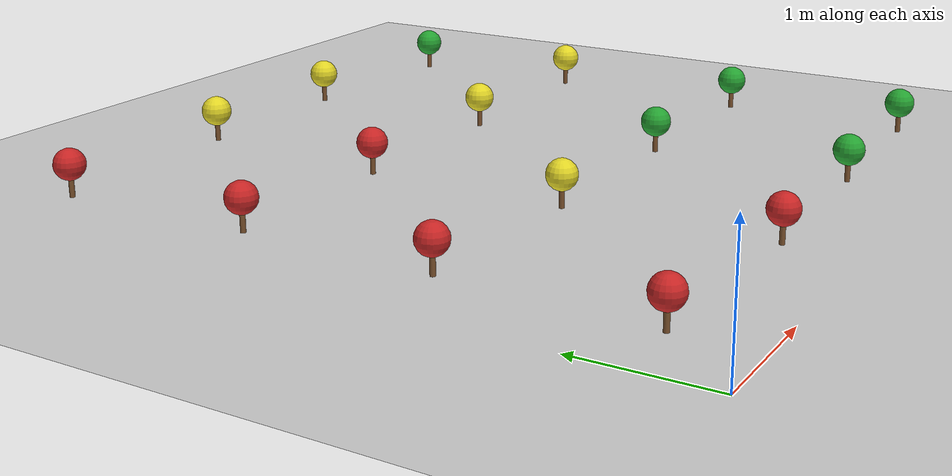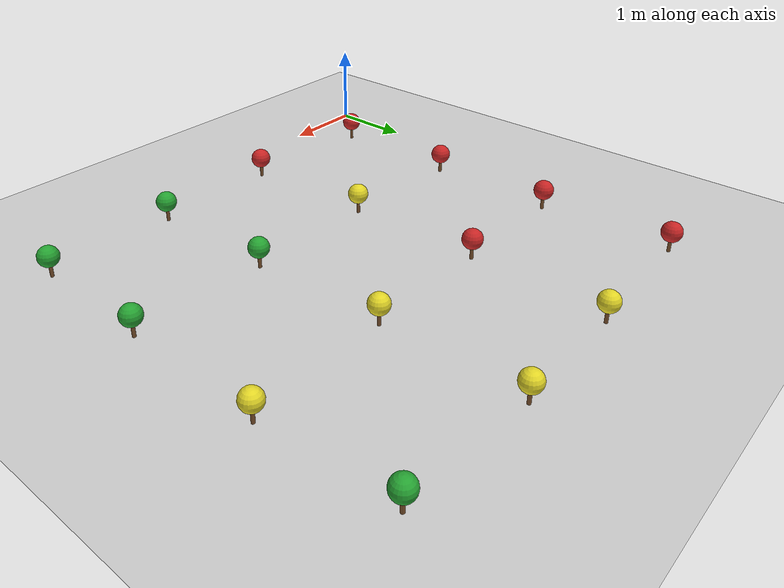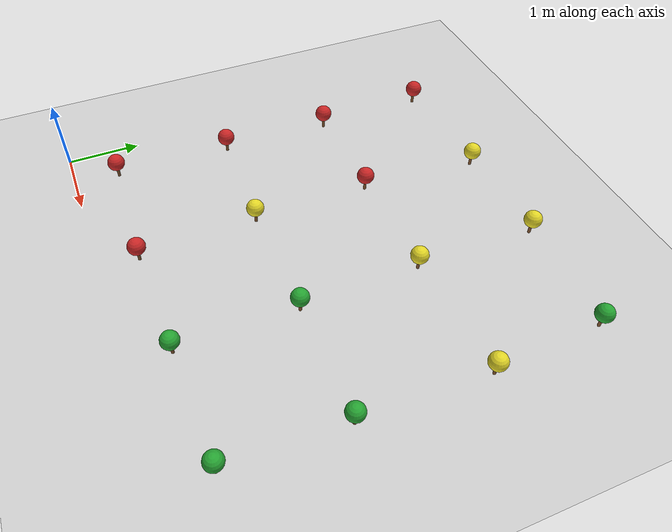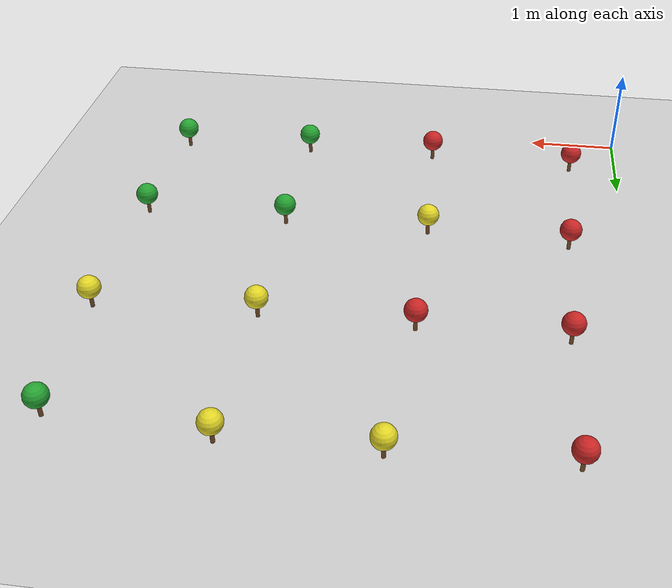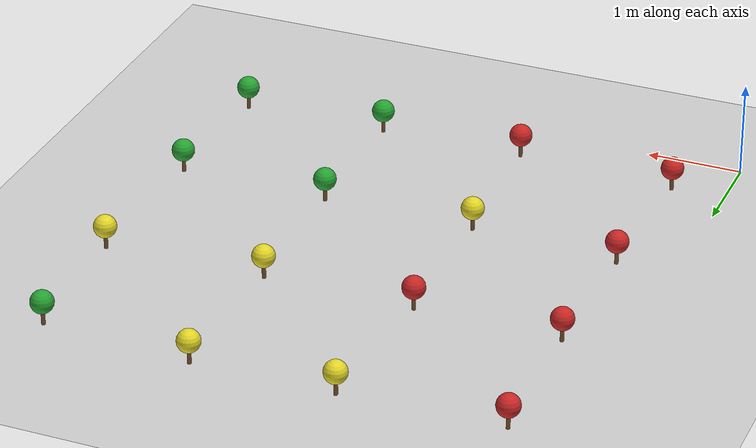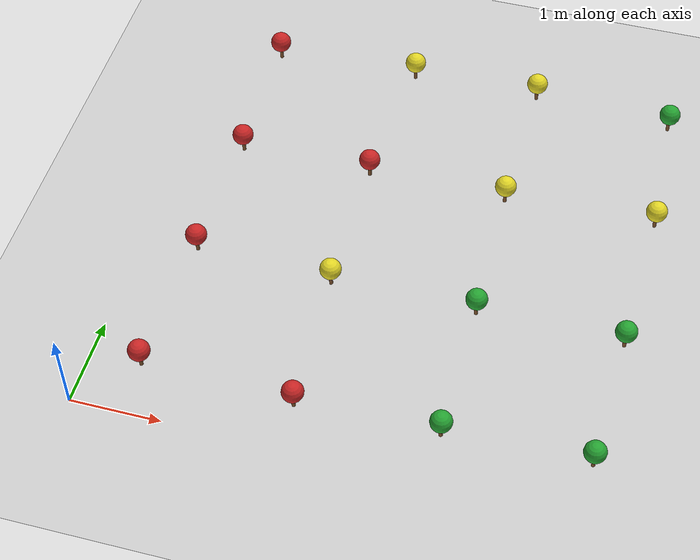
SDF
<?xml version="1.0"?>
<sdf version="1.6">
  <world name="farm_field">
    <include><uri>model://sun</uri></include>
    <include><uri>model://ground_plane</uri></include>

    <physics type="ode">
      <max_step_size>0.001</max_step_size>
      <real_time_factor>1</real_time_factor>
      <real_time_update_rate>1000</real_time_update_rate>
    </physics>

    <gui>
      <camera name="user_camera">
        <pose>-2 -2 4 0 0.6 0.8</pose>
      </camera>
    </gui>

    <model name="plant_1">
      <static>true</static>
      <pose>0.557 0.616 0 0 0 0</pose>
      <link name="link">
        <visual name="stem_visual">
          <pose>0 0 0.1 0 0 0</pose>
          <geometry><cylinder><radius>0.02</radius><length>0.2</length></cylinder></geometry>
          <material>
            <script>
              <uri>file://media/materials/scripts/gazebo.material</uri>
              <name>Gazebo/Brown</name>
            </script>
          </material>
        </visual>
        <collision name="stem_collision">
          <pose>0 0 0.1 0 0 0</pose>
          <geometry><cylinder><radius>0.02</radius><length>0.2</length></cylinder></geometry>
        </collision>
        <visual name="foliage_visual">
          <pose>0 0 0.25 0 0 0</pose>
          <geometry><sphere><radius>0.12</radius></sphere></geometry>
          <material>
            <script>
              <uri>file://media/materials/scripts/gazebo.material</uri>
              <name>Gazebo/Red</name>
            </script>
          </material>
        </visual>
        <collision name="foliage_collision">
          <pose>0 0 0.25 0 0 0</pose>
          <geometry><sphere><radius>0.12</radius></sphere></geometry>
        </collision>
      </link>
    </model>

    <model name="plant_2">
      <static>true</static>
      <pose>0.61 2.235 0 0 0 0</pose>
      <link name="link">
        <visual name="stem_visual">
          <pose>0 0 0.1 0 0 0</pose>
          <geometry><cylinder><radius>0.02</radius><length>0.2</length></cylinder></geometry>
          <material>
            <script>
              <uri>file://media/materials/scripts/gazebo.material</uri>
              <name>Gazebo/Brown</name>
            </script>
          </material>
        </visual>
        <collision name="stem_collision">
          <pose>0 0 0.1 0 0 0</pose>
          <geometry><cylinder><radius>0.02</radius><length>0.2</length></cylinder></geometry>
        </collision>
        <visual name="foliage_visual">
          <pose>0 0 0.25 0 0 0</pose>
          <geometry><sphere><radius>0.12</radius></sphere></geometry>
          <material>
            <script>
              <uri>file://media/materials/scripts/gazebo.material</uri>
              <name>Gazebo/Red</name>
            </script>
          </material>
        </visual>
        <collision name="foliage_collision">
          <pose>0 0 0.25 0 0 0</pose>
          <geometry><sphere><radius>0.12</radius></sphere></geometry>
        </collision>
      </link>
    </model>

    <model name="plant_3">
      <static>true</static>
      <pose>0.632 3.787 0 0 0 0</pose>
      <link name="link">
        <visual name="stem_visual">
          <pose>0 0 0.1 0 0 0</pose>
          <geometry><cylinder><radius>0.02</radius><length>0.2</length></cylinder></geometry>
          <material>
            <script>
              <uri>file://media/materials/scripts/gazebo.material</uri>
              <name>Gazebo/Brown</name>
            </script>
          </material>
        </visual>
        <collision name="stem_collision">
          <pose>0 0 0.1 0 0 0</pose>
          <geometry><cylinder><radius>0.02</radius><length>0.2</length></cylinder></geometry>
        </collision>
        <visual name="foliage_visual">
          <pose>0 0 0.25 0 0 0</pose>
          <geometry><sphere><radius>0.12</radius></sphere></geometry>
          <material>
            <script>
              <uri>file://media/materials/scripts/gazebo.material</uri>
              <name>Gazebo/Red</name>
            </script>
          </material>
        </visual>
        <collision name="foliage_collision">
          <pose>0 0 0.25 0 0 0</pose>
          <geometry><sphere><radius>0.12</radius></sphere></geometry>
        </collision>
      </link>
    </model>

    <model name="plant_4">
      <static>true</static>
      <pose>0.592 5.365 0 0 0 0</pose>
      <link name="link">
        <visual name="stem_visual">
          <pose>0 0 0.1 0 0 0</pose>
          <geometry><cylinder><radius>0.02</radius><length>0.2</length></cylinder></geometry>
          <material>
            <script>
              <uri>file://media/materials/scripts/gazebo.material</uri>
              <name>Gazebo/Brown</name>
            </script>
          </material>
        </visual>
        <collision name="stem_collision">
          <pose>0 0 0.1 0 0 0</pose>
          <geometry><cylinder><radius>0.02</radius><length>0.2</length></cylinder></geometry>
        </collision>
        <visual name="foliage_visual">
          <pose>0 0 0.25 0 0 0</pose>
          <geometry><sphere><radius>0.12</radius></sphere></geometry>
          <material>
            <script>
              <uri>file://media/materials/scripts/gazebo.material</uri>
              <name>Gazebo/Red</name>
            </script>
          </material>
        </visual>
        <collision name="foliage_collision">
          <pose>0 0 0.25 0 0 0</pose>
          <geometry><sphere><radius>0.12</radius></sphere></geometry>
        </collision>
      </link>
    </model>

    <model name="plant_5">
      <static>true</static>
      <pose>2.259 5.441 0 0 0 0</pose>
      <link name="link">
        <visual name="stem_visual">
          <pose>0 0 0.1 0 0 0</pose>
          <geometry><cylinder><radius>0.02</radius><length>0.2</length></cylinder></geometry>
          <material>
            <script>
              <uri>file://media/materials/scripts/gazebo.material</uri>
              <name>Gazebo/Brown</name>
            </script>
          </material>
        </visual>
        <collision name="stem_collision">
          <pose>0 0 0.1 0 0 0</pose>
          <geometry><cylinder><radius>0.02</radius><length>0.2</length></cylinder></geometry>
        </collision>
        <visual name="foliage_visual">
          <pose>0 0 0.25 0 0 0</pose>
          <geometry><sphere><radius>0.12</radius></sphere></geometry>
          <material>
            <script>
              <uri>file://media/materials/scripts/gazebo.material</uri>
              <name>Gazebo/Yellow</name>
            </script>
          </material>
        </visual>
        <collision name="foliage_collision">
          <pose>0 0 0.25 0 0 0</pose>
          <geometry><sphere><radius>0.12</radius></sphere></geometry>
        </collision>
      </link>
    </model>

    <model name="plant_6">
      <static>true</static>
      <pose>2.146 3.788 0 0 0 0</pose>
      <link name="link">
        <visual name="stem_visual">
          <pose>0 0 0.1 0 0 0</pose>
          <geometry><cylinder><radius>0.02</radius><length>0.2</length></cylinder></geometry>
          <material>
            <script>
              <uri>file://media/materials/scripts/gazebo.material</uri>
              <name>Gazebo/Brown</name>
            </script>
          </material>
        </visual>
        <collision name="stem_collision">
          <pose>0 0 0.1 0 0 0</pose>
          <geometry><cylinder><radius>0.02</radius><length>0.2</length></cylinder></geometry>
        </collision>
        <visual name="foliage_visual">
          <pose>0 0 0.25 0 0 0</pose>
          <geometry><sphere><radius>0.12</radius></sphere></geometry>
          <material>
            <script>
              <uri>file://media/materials/scripts/gazebo.material</uri>
              <name>Gazebo/Red</name>
            </script>
          </material>
        </visual>
        <collision name="foliage_collision">
          <pose>0 0 0.25 0 0 0</pose>
          <geometry><sphere><radius>0.12</radius></sphere></geometry>
        </collision>
      </link>
    </model>

    <model name="plant_7">
      <static>true</static>
      <pose>2.164 2.154 0 0 0 0</pose>
      <link name="link">
        <visual name="stem_visual">
          <pose>0 0 0.1 0 0 0</pose>
          <geometry><cylinder><radius>0.02</radius><length>0.2</length></cylinder></geometry>
          <material>
            <script>
              <uri>file://media/materials/scripts/gazebo.material</uri>
              <name>Gazebo/Brown</name>
            </script>
          </material>
        </visual>
        <collision name="stem_collision">
          <pose>0 0 0.1 0 0 0</pose>
          <geometry><cylinder><radius>0.02</radius><length>0.2</length></cylinder></geometry>
        </collision>
        <visual name="foliage_visual">
          <pose>0 0 0.25 0 0 0</pose>
          <geometry><sphere><radius>0.12</radius></sphere></geometry>
          <material>
            <script>
              <uri>file://media/materials/scripts/gazebo.material</uri>
              <name>Gazebo/Yellow</name>
            </script>
          </material>
        </visual>
        <collision name="foliage_collision">
          <pose>0 0 0.25 0 0 0</pose>
          <geometry><sphere><radius>0.12</radius></sphere></geometry>
        </collision>
      </link>
    </model>

    <model name="plant_8">
      <static>true</static>
      <pose>2.242 0.536 0 0 0 0</pose>
      <link name="link">
        <visual name="stem_visual">
          <pose>0 0 0.1 0 0 0</pose>
          <geometry><cylinder><radius>0.02</radius><length>0.2</length></cylinder></geometry>
          <material>
            <script>
              <uri>file://media/materials/scripts/gazebo.material</uri>
              <name>Gazebo/Brown</name>
            </script>
          </material>
        </visual>
        <collision name="stem_collision">
          <pose>0 0 0.1 0 0 0</pose>
          <geometry><cylinder><radius>0.02</radius><length>0.2</length></cylinder></geometry>
        </collision>
        <visual name="foliage_visual">
          <pose>0 0 0.25 0 0 0</pose>
          <geometry><sphere><radius>0.12</radius></sphere></geometry>
          <material>
            <script>
              <uri>file://media/materials/scripts/gazebo.material</uri>
              <name>Gazebo/Red</name>
            </script>
          </material>
        </visual>
        <collision name="foliage_collision">
          <pose>0 0 0.25 0 0 0</pose>
          <geometry><sphere><radius>0.12</radius></sphere></geometry>
        </collision>
      </link>
    </model>

    <model name="plant_9">
      <static>true</static>
      <pose>3.781 0.577 0 0 0 0</pose>
      <link name="link">
        <visual name="stem_visual">
          <pose>0 0 0.1 0 0 0</pose>
          <geometry><cylinder><radius>0.02</radius><length>0.2</length></cylinder></geometry>
          <material>
            <script>
              <uri>file://media/materials/scripts/gazebo.material</uri>
              <name>Gazebo/Brown</name>
            </script>
          </material>
        </visual>
        <collision name="stem_collision">
          <pose>0 0 0.1 0 0 0</pose>
          <geometry><cylinder><radius>0.02</radius><length>0.2</length></cylinder></geometry>
        </collision>
        <visual name="foliage_visual">
          <pose>0 0 0.25 0 0 0</pose>
          <geometry><sphere><radius>0.12</radius></sphere></geometry>
          <material>
            <script>
              <uri>file://media/materials/scripts/gazebo.material</uri>
              <name>Gazebo/Green</name>
            </script>
          </material>
        </visual>
        <collision name="foliage_collision">
          <pose>0 0 0.25 0 0 0</pose>
          <geometry><sphere><radius>0.12</radius></sphere></geometry>
        </collision>
      </link>
    </model>

    <model name="plant_10">
      <static>true</static>
      <pose>3.775 2.162 0 0 0 0</pose>
      <link name="link">
        <visual name="stem_visual">
          <pose>0 0 0.1 0 0 0</pose>
          <geometry><cylinder><radius>0.02</radius><length>0.2</length></cylinder></geometry>
          <material>
            <script>
              <uri>file://media/materials/scripts/gazebo.material</uri>
              <name>Gazebo/Brown</name>
            </script>
          </material>
        </visual>
        <collision name="stem_collision">
          <pose>0 0 0.1 0 0 0</pose>
          <geometry><cylinder><radius>0.02</radius><length>0.2</length></cylinder></geometry>
        </collision>
        <visual name="foliage_visual">
          <pose>0 0 0.25 0 0 0</pose>
          <geometry><sphere><radius>0.12</radius></sphere></geometry>
          <material>
            <script>
              <uri>file://media/materials/scripts/gazebo.material</uri>
              <name>Gazebo/Green</name>
            </script>
          </material>
        </visual>
        <collision name="foliage_collision">
          <pose>0 0 0.25 0 0 0</pose>
          <geometry><sphere><radius>0.12</radius></sphere></geometry>
        </collision>
      </link>
    </model>

    <model name="plant_11">
      <static>true</static>
      <pose>3.727 3.794 0 0 0 0</pose>
      <link name="link">
        <visual name="stem_visual">
          <pose>0 0 0.1 0 0 0</pose>
          <geometry><cylinder><radius>0.02</radius><length>0.2</length></cylinder></geometry>
          <material>
            <script>
              <uri>file://media/materials/scripts/gazebo.material</uri>
              <name>Gazebo/Brown</name>
            </script>
          </material>
        </visual>
        <collision name="stem_collision">
          <pose>0 0 0.1 0 0 0</pose>
          <geometry><cylinder><radius>0.02</radius><length>0.2</length></cylinder></geometry>
        </collision>
        <visual name="foliage_visual">
          <pose>0 0 0.25 0 0 0</pose>
          <geometry><sphere><radius>0.12</radius></sphere></geometry>
          <material>
            <script>
              <uri>file://media/materials/scripts/gazebo.material</uri>
              <name>Gazebo/Yellow</name>
            </script>
          </material>
        </visual>
        <collision name="foliage_collision">
          <pose>0 0 0.25 0 0 0</pose>
          <geometry><sphere><radius>0.12</radius></sphere></geometry>
        </collision>
      </link>
    </model>

    <model name="plant_12">
      <static>true</static>
      <pose>3.74 5.468 0 0 0 0</pose>
      <link name="link">
        <visual name="stem_visual">
          <pose>0 0 0.1 0 0 0</pose>
          <geometry><cylinder><radius>0.02</radius><length>0.2</length></cylinder></geometry>
          <material>
            <script>
              <uri>file://media/materials/scripts/gazebo.material</uri>
              <name>Gazebo/Brown</name>
            </script>
          </material>
        </visual>
        <collision name="stem_collision">
          <pose>0 0 0.1 0 0 0</pose>
          <geometry><cylinder><radius>0.02</radius><length>0.2</length></cylinder></geometry>
        </collision>
        <visual name="foliage_visual">
          <pose>0 0 0.25 0 0 0</pose>
          <geometry><sphere><radius>0.12</radius></sphere></geometry>
          <material>
            <script>
              <uri>file://media/materials/scripts/gazebo.material</uri>
              <name>Gazebo/Yellow</name>
            </script>
          </material>
        </visual>
        <collision name="foliage_collision">
          <pose>0 0 0.25 0 0 0</pose>
          <geometry><sphere><radius>0.12</radius></sphere></geometry>
        </collision>
      </link>
    </model>

    <model name="plant_13">
      <static>true</static>
      <pose>5.333 5.367 0 0 0 0</pose>
      <link name="link">
        <visual name="stem_visual">
          <pose>0 0 0.1 0 0 0</pose>
          <geometry><cylinder><radius>0.02</radius><length>0.2</length></cylinder></geometry>
          <material>
            <script>
              <uri>file://media/materials/scripts/gazebo.material</uri>
              <name>Gazebo/Brown</name>
            </script>
          </material>
        </visual>
        <collision name="stem_collision">
          <pose>0 0 0.1 0 0 0</pose>
          <geometry><cylinder><radius>0.02</radius><length>0.2</length></cylinder></geometry>
        </collision>
        <visual name="foliage_visual">
          <pose>0 0 0.25 0 0 0</pose>
          <geometry><sphere><radius>0.12</radius></sphere></geometry>
          <material>
            <script>
              <uri>file://media/materials/scripts/gazebo.material</uri>
              <name>Gazebo/Green</name>
            </script>
          </material>
        </visual>
        <collision name="foliage_collision">
          <pose>0 0 0.25 0 0 0</pose>
          <geometry><sphere><radius>0.12</radius></sphere></geometry>
        </collision>
      </link>
    </model>

    <model name="plant_14">
      <static>true</static>
      <pose>5.421 3.862 0 0 0 0</pose>
      <link name="link">
        <visual name="stem_visual">
          <pose>0 0 0.1 0 0 0</pose>
          <geometry><cylinder><radius>0.02</radius><length>0.2</length></cylinder></geometry>
          <material>
            <script>
              <uri>file://media/materials/scripts/gazebo.material</uri>
              <name>Gazebo/Brown</name>
            </script>
          </material>
        </visual>
        <collision name="stem_collision">
          <pose>0 0 0.1 0 0 0</pose>
          <geometry><cylinder><radius>0.02</radius><length>0.2</length></cylinder></geometry>
        </collision>
        <visual name="foliage_visual">
          <pose>0 0 0.25 0 0 0</pose>
          <geometry><sphere><radius>0.12</radius></sphere></geometry>
          <material>
            <script>
              <uri>file://media/materials/scripts/gazebo.material</uri>
              <name>Gazebo/Yellow</name>
            </script>
          </material>
        </visual>
        <collision name="foliage_collision">
          <pose>0 0 0.25 0 0 0</pose>
          <geometry><sphere><radius>0.12</radius></sphere></geometry>
        </collision>
      </link>
    </model>

    <model name="plant_15">
      <static>true</static>
      <pose>5.378 2.151 0 0 0 0</pose>
      <link name="link">
        <visual name="stem_visual">
          <pose>0 0 0.1 0 0 0</pose>
          <geometry><cylinder><radius>0.02</radius><length>0.2</length></cylinder></geometry>
          <material>
            <script>
              <uri>file://media/materials/scripts/gazebo.material</uri>
              <name>Gazebo/Brown</name>
            </script>
          </material>
        </visual>
        <collision name="stem_collision">
          <pose>0 0 0.1 0 0 0</pose>
          <geometry><cylinder><radius>0.02</radius><length>0.2</length></cylinder></geometry>
        </collision>
        <visual name="foliage_visual">
          <pose>0 0 0.25 0 0 0</pose>
          <geometry><sphere><radius>0.12</radius></sphere></geometry>
          <material>
            <script>
              <uri>file://media/materials/scripts/gazebo.material</uri>
              <name>Gazebo/Green</name>
            </script>
          </material>
        </visual>
        <collision name="foliage_collision">
          <pose>0 0 0.25 0 0 0</pose>
          <geometry><sphere><radius>0.12</radius></sphere></geometry>
        </collision>
      </link>
    </model>

    <model name="plant_16">
      <static>true</static>
      <pose>5.331 0.626 0 0 0 0</pose>
      <link name="link">
        <visual name="stem_visual">
          <pose>0 0 0.1 0 0 0</pose>
          <geometry><cylinder><radius>0.02</radius><length>0.2</length></cylinder></geometry>
          <material>
            <script>
              <uri>file://media/materials/scripts/gazebo.material</uri>
              <name>Gazebo/Brown</name>
            </script>
          </material>
        </visual>
        <collision name="stem_collision">
          <pose>0 0 0.1 0 0 0</pose>
          <geometry><cylinder><radius>0.02</radius><length>0.2</length></cylinder></geometry>
        </collision>
        <visual name="foliage_visual">
          <pose>0 0 0.25 0 0 0</pose>
          <geometry><sphere><radius>0.12</radius></sphere></geometry>
          <material>
            <script>
              <uri>file://media/materials/scripts/gazebo.material</uri>
              <name>Gazebo/Green</name>
            </script>
          </material>
        </visual>
        <collision name="foliage_collision">
          <pose>0 0 0.25 0 0 0</pose>
          <geometry><sphere><radius>0.12</radius></sphere></geometry>
        </collision>
      </link>
    </model>

  </world>
</sdf>
